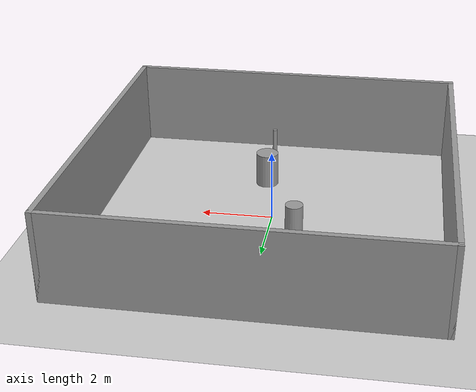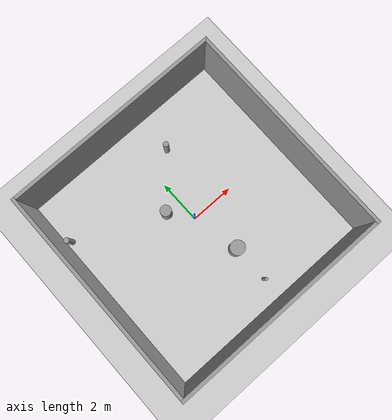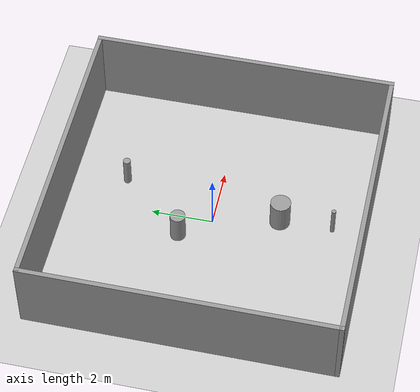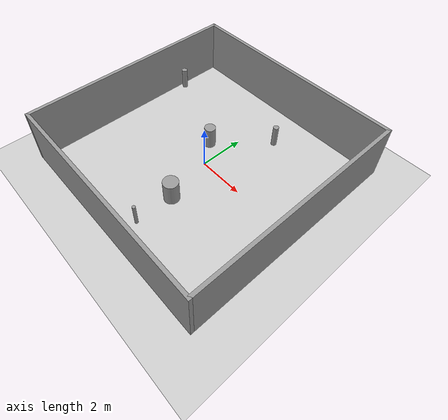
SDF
<sdf version='1.6'>
  <world name='default'>
    <light name='sun' type='directional'>
      <cast_shadows>1</cast_shadows>
      <pose frame=''>0 0 10 0 -0 0</pose>
      <diffuse>0.8 0.8 0.8 1</diffuse>
      <specular>0.2 0.2 0.2 1</specular>
      <attenuation>
        <range>1000</range>
        <constant>0.9</constant>
        <linear>0.01</linear>
        <quadratic>0.001</quadratic>
      </attenuation>
      <direction>-0.5 0.1 -0.9</direction>
    </light>
    <model name='ground_plane'>
      <static>1</static>
      <link name='link'>
        <collision name='collision'>
          <geometry>
            <plane>
              <normal>0 0 1</normal>
              <size>100 100</size>
            </plane>
          </geometry>
          <surface>
            <friction>
              <ode>
                <mu>100</mu>
                <mu2>50</mu2>
              </ode>
              <torsional>
                <ode/>
              </torsional>
            </friction>
            <contact>
              <ode/>
            </contact>
            <bounce/>
          </surface>
          <max_contacts>10</max_contacts>
        </collision>
        <visual name='visual'>
          <cast_shadows>0</cast_shadows>
          <geometry>
            <plane>
              <normal>0 0 1</normal>
              <size>100 100</size>
            </plane>
          </geometry>
          <material>
            <ambient>1 1 1 1</ambient>
            <diffuse>0.8 0.8 0.8 1</diffuse>
            <specular>0.01 0.01 0.01 1</specular>
          </material>
        </visual>
        <self_collide>0</self_collide>
        <kinematic>0</kinematic>
      </link>
    </model>
    <gravity>0 0 -9.8</gravity>
    <magnetic_field>6e-06 2.3e-05 -4.2e-05</magnetic_field>
    <atmosphere type='adiabatic'/>
    <physics name='default_physics' default='0' type='ode'>
      <max_step_size>0.001</max_step_size>
      <real_time_factor>1</real_time_factor>
      <real_time_update_rate>1000</real_time_update_rate>
    </physics>
    <scene>
      <ambient>0.4 0.4 0.4 1</ambient>
      <background>0.7 0.7 0.7 1</background>
      <shadows>1</shadows>
    </scene>
    <spherical_coordinates>
      <surface_model>EARTH_WGS84</surface_model>
      <latitude_deg>0</latitude_deg>
      <longitude_deg>0</longitude_deg>
      <elevation>0</elevation>
      <heading_deg>0</heading_deg>
    </spherical_coordinates>
    <plugin name='gazebo_occupancy_map' filename='libgazebo_2Dmap_plugin.so'>
      <map_resolution>0.025</map_resolution>
      <map_height>0.1</map_height>
    </plugin>
    <gui fullscreen='0'>
      <camera name='user_camera'>
        <pose frame=''>2.13634 -6.24235 22.191 0 1.2458 1.66021</pose>
        <view_controller>orbit</view_controller>
        <projection_type>perspective</projection_type>
      </camera>
    </gui>
    <model name='10x10_training'>
      <pose frame=''>0.025359 -0.006233 0 0 -0 0</pose>
      <link name='Wall_11'>
        <collision name='Wall_11_Collision'>
          <geometry>
            <box>
              <size>10 0.15 2.5</size>
            </box>
          </geometry>
          <pose frame=''>0 0 1.25 0 -0 0</pose>
          <max_contacts>10</max_contacts>
          <surface>
            <contact>
              <ode/>
            </contact>
            <bounce/>
            <friction>
              <torsional>
                <ode/>
              </torsional>
              <ode/>
            </friction>
          </surface>
        </collision>
        <visual name='Wall_11_Visual'>
          <pose frame=''>0 0 1.25 0 -0 0</pose>
          <geometry>
            <box>
              <size>10 0.15 2.5</size>
            </box>
          </geometry>
          <material>
            <script>
              <uri>file://media/materials/scripts/gazebo.material</uri>
              <name>Gazebo/Grey</name>
            </script>
            <ambient>1 1 1 1</ambient>
          </material>
          <meta>
            <layer>0</layer>
          </meta>
        </visual>
        <pose frame=''>0 -4.925 0 0 -0 3.14159</pose>
        <self_collide>0</self_collide>
        <kinematic>0</kinematic>
      </link>
      <link name='Wall_12'>
        <collision name='Wall_12_Collision'>
          <geometry>
            <box>
              <size>10 0.15 2.5</size>
            </box>
          </geometry>
          <pose frame=''>0 0 1.25 0 -0 0</pose>
          <max_contacts>10</max_contacts>
          <surface>
            <contact>
              <ode/>
            </contact>
            <bounce/>
            <friction>
              <torsional>
                <ode/>
              </torsional>
              <ode/>
            </friction>
          </surface>
        </collision>
        <visual name='Wall_12_Visual'>
          <pose frame=''>0 0 1.25 0 -0 0</pose>
          <geometry>
            <box>
              <size>10 0.15 2.5</size>
            </box>
          </geometry>
          <material>
            <script>
              <uri>file://media/materials/scripts/gazebo.material</uri>
              <name>Gazebo/Grey</name>
            </script>
            <ambient>1 1 1 1</ambient>
          </material>
          <meta>
            <layer>0</layer>
          </meta>
        </visual>
        <pose frame=''>-4.925 0 0 0 -0 1.5708</pose>
        <self_collide>0</self_collide>
        <kinematic>0</kinematic>
      </link>
      <link name='Wall_13'>
        <collision name='Wall_13_Collision'>
          <geometry>
            <box>
              <size>10 0.15 2.5</size>
            </box>
          </geometry>
          <pose frame=''>0 0 1.25 0 -0 0</pose>
          <max_contacts>10</max_contacts>
          <surface>
            <contact>
              <ode/>
            </contact>
            <bounce/>
            <friction>
              <torsional>
                <ode/>
              </torsional>
              <ode/>
            </friction>
          </surface>
        </collision>
        <visual name='Wall_13_Visual'>
          <pose frame=''>0 0 1.25 0 -0 0</pose>
          <geometry>
            <box>
              <size>10 0.15 2.5</size>
            </box>
          </geometry>
          <material>
            <script>
              <uri>file://media/materials/scripts/gazebo.material</uri>
              <name>Gazebo/Grey</name>
            </script>
            <ambient>1 1 1 1</ambient>
          </material>
          <meta>
            <layer>0</layer>
          </meta>
        </visual>
        <pose frame=''>0 4.925 0 0 -0 0</pose>
        <self_collide>0</self_collide>
        <kinematic>0</kinematic>
      </link>
      <link name='Wall_9'>
        <collision name='Wall_9_Collision'>
          <geometry>
            <box>
              <size>10 0.15 2.5</size>
            </box>
          </geometry>
          <pose frame=''>0 0 1.25 0 -0 0</pose>
          <max_contacts>10</max_contacts>
          <surface>
            <contact>
              <ode/>
            </contact>
            <bounce/>
            <friction>
              <torsional>
                <ode/>
              </torsional>
              <ode/>
            </friction>
          </surface>
        </collision>
        <visual name='Wall_9_Visual'>
          <pose frame=''>0 0 1.25 0 -0 0</pose>
          <geometry>
            <box>
              <size>10 0.15 2.5</size>
            </box>
          </geometry>
          <material>
            <script>
              <uri>file://media/materials/scripts/gazebo.material</uri>
              <name>Gazebo/Grey</name>
            </script>
            <ambient>1 1 1 1</ambient>
          </material>
          <meta>
            <layer>0</layer>
          </meta>
        </visual>
        <pose frame=''>4.925 0 0 0 0 -1.5708</pose>
        <self_collide>0</self_collide>
        <kinematic>0</kinematic>
      </link>
      <static>1</static>
    </model>
    <model name='cylinder0'>
      <pose frame=''>-0.748615 0.967609 0.5 0 -0 0</pose>
      <link name='link'>
        <collision name='collision'>
          <geometry>
            <cylinder>
              <radius>0.245872</radius>
              <length>1</length>
            </cylinder>
          </geometry>
          <max_contacts>10</max_contacts>
          <surface>
            <contact>
              <ode/>
            </contact>
            <bounce/>
            <friction>
              <torsional>
                <ode/>
              </torsional>
              <ode/>
            </friction>
          </surface>
        </collision>
        <visual name='visual'>
          <geometry>
            <cylinder>
              <radius>0.245872</radius>
              <length>1</length>
            </cylinder>
          </geometry>
          <material>
            <script>
              <name>Gazebo/Grey</name>
              <uri>file://media/materials/scripts/gazebo.material</uri>
            </script>
          </material>
        </visual>
        <self_collide>0</self_collide>
        <kinematic>0</kinematic>
      </link>
      <static>1</static>
    </model>
    <model name='cylinder1'>
      <pose frame=''>.48 -3.86 0.5 -0 -0 -1e-06</pose>
      <link name='link'>
        <collision name='collision'>
          <geometry>
            <cylinder>
              <radius>0.07</radius>
              <length>1</length>
            </cylinder>
          </geometry>
          <max_contacts>10</max_contacts>
          <surface>
            <contact>
              <ode/>
            </contact>
            <bounce/>
            <friction>
              <torsional>
                <ode/>
              </torsional>
              <ode/>
            </friction>
          </surface>
        </collision>
        <visual name='visual'>
          <geometry>
            <cylinder>
              <radius>0.07</radius>
              <length>1</length>
            </cylinder>
          </geometry>
          <material>
            <script>
              <name>Gazebo/Grey</name>
              <uri>file://media/materials/scripts/gazebo.material</uri>
            </script>
          </material>
        </visual>
        <self_collide>0</self_collide>
        <kinematic>0</kinematic>
      </link>
      <static>1</static>
    </model>
    <model name='cylinder2'>
      <pose frame=''>-4.6 2.73372 0.5 0 -0 -1e-06</pose>
      <link name='link'>
        <inertial>
          <mass>1</mass>
          <inertia>
            <ixx>0.145833</ixx>
            <ixy>0</ixy>
            <ixz>0</ixz>
            <iyy>0.145833</iyy>
            <iyz>0</iyz>
            <izz>0.125</izz>
          </inertia>
        </inertial>
        <collision name='collision'>
          <geometry>
            <cylinder>
              <radius>0.122936</radius>
              <length>1</length>
            </cylinder>
          </geometry>
          <max_contacts>10</max_contacts>
          <surface>
            <contact>
              <ode/>
            </contact>
            <bounce/>
            <friction>
              <torsional>
                <ode/>
              </torsional>
              <ode/>
            </friction>
          </surface>
        </collision>
        <visual name='visual'>
          <geometry>
            <cylinder>
              <radius>0.122936</radius>
              <length>1</length>
            </cylinder>
          </geometry>
          <material>
            <script>
              <name>Gazebo/Grey</name>
              <uri>file://media/materials/scripts/gazebo.material</uri>
            </script>
          </material>
        </visual>
        <self_collide>0</self_collide>
        <kinematic>0</kinematic>
      </link>
      <static>1</static>
    </model>
    <model name='unit_cylinder_clone_1'>
      <pose frame=''>1.11716 3.10134 0.499993 -0 -0 -1e-06</pose>
      <link name='link'>
        <collision name='collision'>
          <geometry>
            <cylinder>
              <radius>0.122936</radius>
              <length>1</length>
            </cylinder>
          </geometry>
          <max_contacts>10</max_contacts>
          <surface>
            <contact>
              <ode/>
            </contact>
            <bounce/>
            <friction>
              <torsional>
                <ode/>
              </torsional>
              <ode/>
            </friction>
          </surface>
        </collision>
        <visual name='visual'>
          <geometry>
            <cylinder>
              <radius>0.122936</radius>
              <length>1</length>
            </cylinder>
          </geometry>
          <material>
            <script>
              <name>Gazebo/Grey</name>
              <uri>file://media/materials/scripts/gazebo.material</uri>
            </script>
          </material>
        </visual>
        <self_collide>0</self_collide>
        <kinematic>0</kinematic>
      </link>
      <static>1</static>
    </model>
    <model name='cylinder4'>
      <pose frame=''>.46 -2.14 0.5 -0 -0 -1e-06</pose>
      <link name='link'>
        <collision name='collision'>
          <geometry>
            <cylinder>
              <radius>0.33</radius>
              <length>1</length>
            </cylinder>
          </geometry>
          <max_contacts>10</max_contacts>
          <surface>
            <contact>
              <ode/>
            </contact>
            <bounce/>
            <friction>
              <torsional>
                <ode/>
              </torsional>
              <ode/>
            </friction>
          </surface>
        </collision>
        <visual name='visual'>
          <geometry>
            <cylinder>
              <radius>0.33</radius>
              <length>1</length>
            </cylinder>
          </geometry>
          <material>
            <script>
              <name>Gazebo/Grey</name>
              <uri>file://media/materials/scripts/gazebo.material</uri>
            </script>
          </material>
        </visual>
        <self_collide>0</self_collide>
        <kinematic>0</kinematic>
      </link>
      <static>1</static>
    </model>
  </world>
</sdf>
